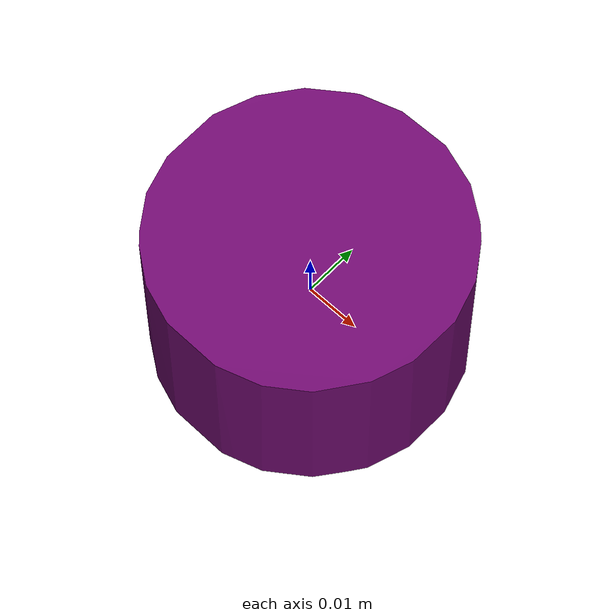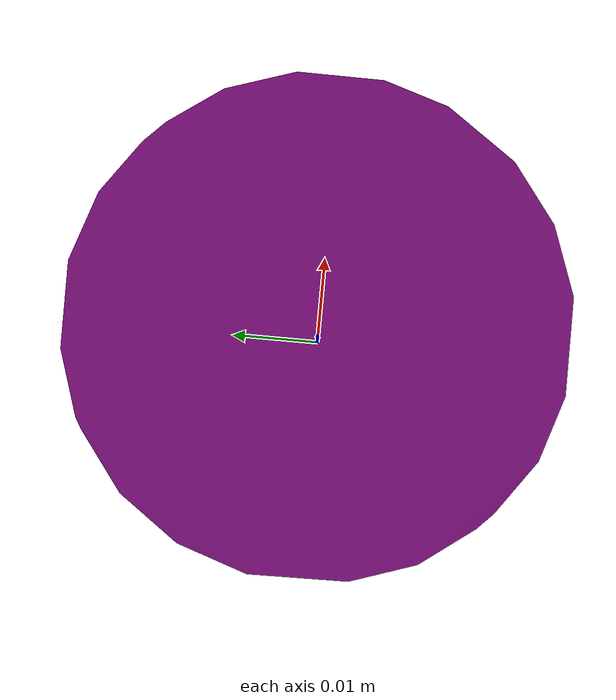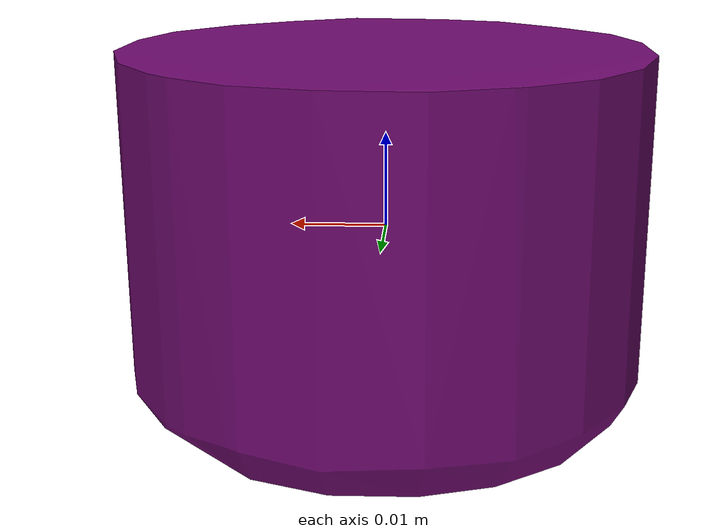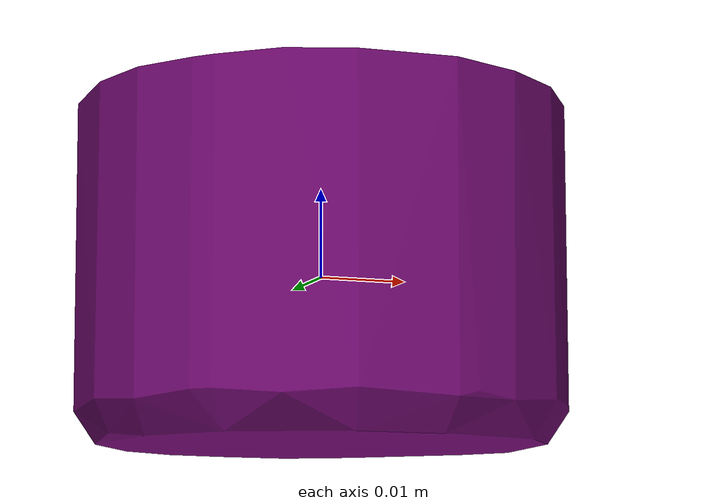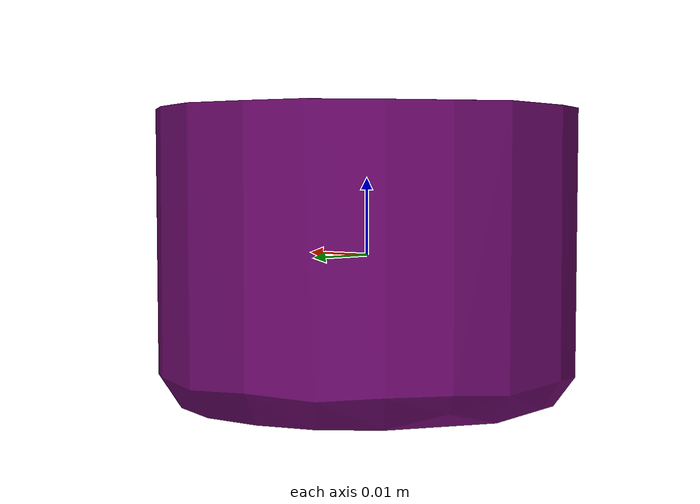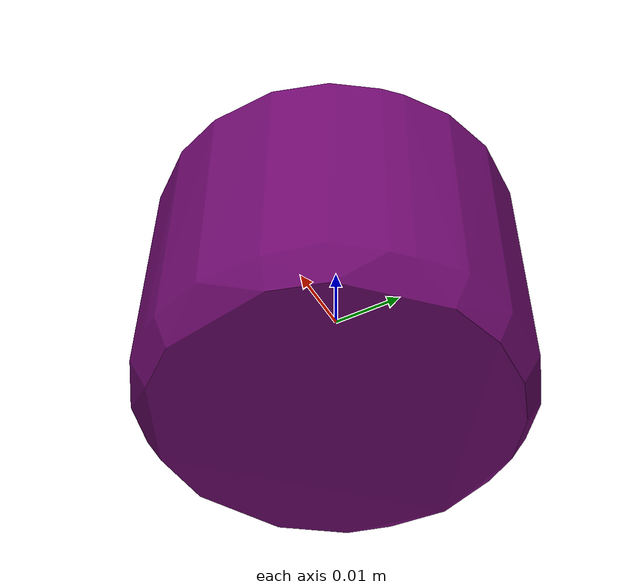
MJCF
<mujoco model="shapenetsem12">
  <asset>
    <mesh file="meshes/shapenetsem12/shapenetsem12_0.stl" name="shapenetsem12_0" scale="0.95 0.95 0.95"/>
  </asset>
  <worldbody>
    <body>
      <body name="collision">
        <geom pos="0 0 0" mesh="shapenetsem12_0" type="mesh" solimp="0.998 0.998 0.001" solref="0.001 1" density="100" friction="0.95 0.3 0.1" rgba="0.44 0.04 0.44 1" group="1" condim="4"/>
      </body>
      <body name="visual">
        <geom pos="0 0 0" mesh="shapenetsem12_0" type="mesh" rgba="0 1 0 1" conaffinity="0" contype="0" group="0" mass="0.0001"/>
      </body>
      <site rgba="0 0 0 0" size="0.005" pos="0 0 -0.06" name="bottom_site"/>
      <site rgba="0 0 0 0" size="0.005" pos="0 0 0.04" name="top_site"/>
      <site rgba="0 0 0 0" size="0.005" pos="0.025 0.025 0" name="horizontal_radius_site"/>
    </body>
  </worldbody>
</mujoco>
